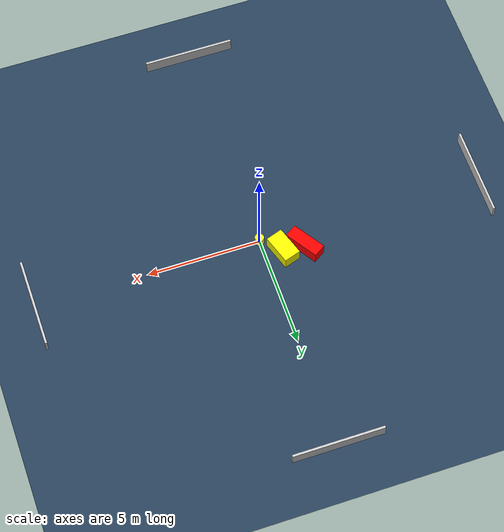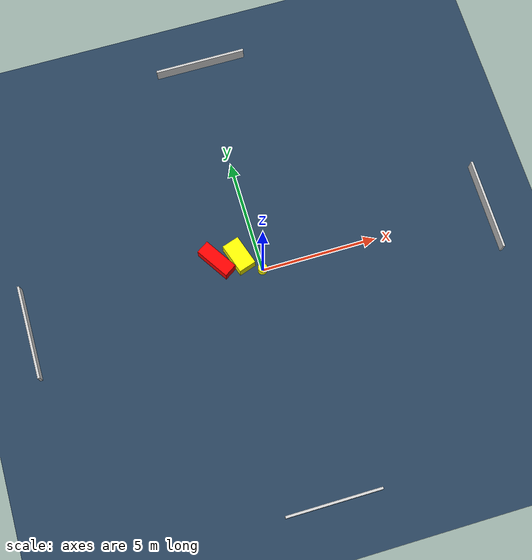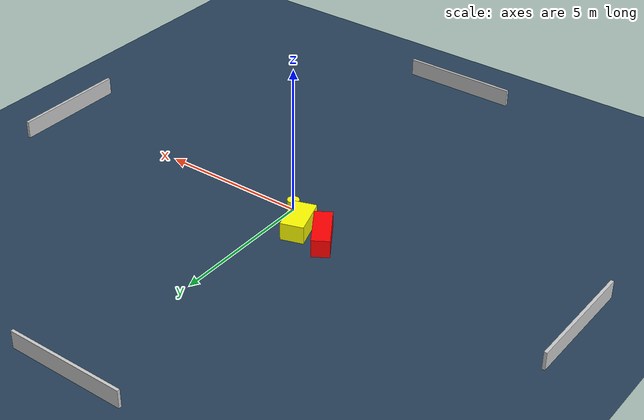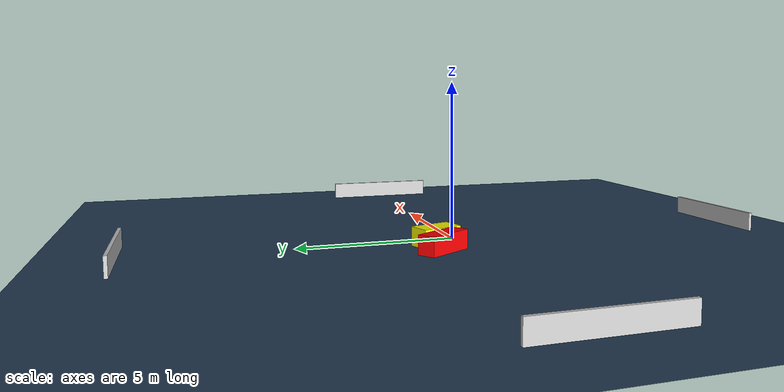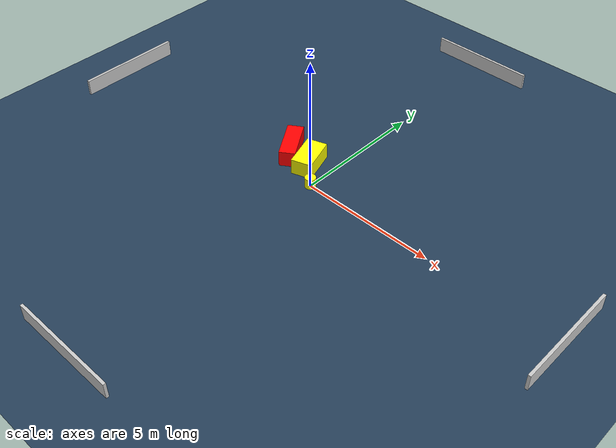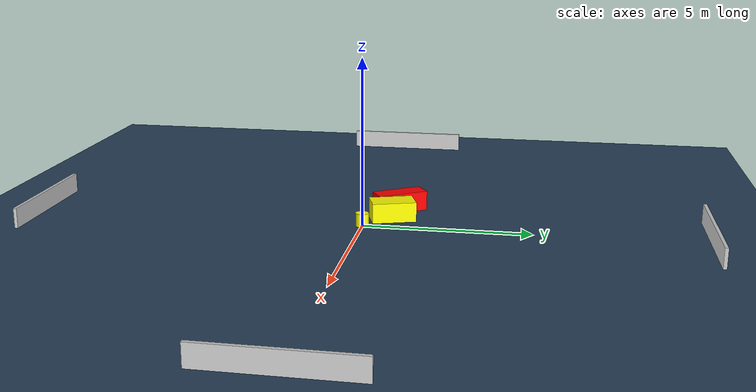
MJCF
<?xml version="1.0" ?>
<mujoco model="generated_environment">
  <option timestep="0.01" integrator="RK4" cone="elliptic"/>
  <default>
    <geom density="1"/>
  </default>
  <asset>
    <texture builtin="gradient" height="3072" name="skybox" rgb1="0.3 0.5 0.7" rgb2="0 0 0" type="skybox" width="512"/>
    <texture builtin="checker" height="300" name="groundplane" rgb1="0.2 0.3 0.4" rgb2="0.1 0.2 0.3" type="2d" width="300"/>
    <material name="groundplane" reflectance="0.2" texrepeat="5 5" texture="groundplane"/>
  </asset>
  <worldbody>
    <light dir="0 0 -1" directional="true" pos="0 0 1.5"/>
    <geom condim="3" friction="0.5 0.005 0.001" material="groundplane" name="floor" pos="0 0 0" size="0 0 0.05" type="plane"/>
    <body name="walls">
      <geom name="wall_1" condim="4" pos="-10.0 0.0 0.3" rgba="0.800000011920929 0.800000011920929 0.800000011920929 1.0" size="0.05 2.0 0.3" type="box"/>
      <geom name="wall_2" condim="4" pos="10.0 0.0 0.3" rgba="0.800000011920929 0.800000011920929 0.800000011920929 1.0" size="0.05 2.0 0.3" type="box"/>
      <geom name="wall_3" condim="4" pos="0.0 -10.0 0.3" rgba="0.800000011920929 0.800000011920929 0.800000011920929 1.0" size="2.0 0.05 0.3" type="box"/>
      <geom name="wall_4" condim="4" pos="0.0 10.0 0.3" rgba="0.800000011920929 0.800000011920929 0.800000011920929 1.0" size="2.0 0.05 0.3" type="box"/>
    </body>
    <body name="robot">
      <joint name="joint_x" type="slide" pos="0 0 0" axis="1 0 0"/>
      <joint name="joint_y" type="slide" pos="0 0 0" axis="0 1 0"/>
      <geom name="robot" type="cylinder" pos="0.0 0.0 0.2" size="0.2 0.2 0.0" mass="5.0" friction="1.0 0.005 0.0001" condim="4" rgba="1.0 1.0 0.0 1.0"/>
    </body>
    <body name="obstacle_1_movable">
      <geom name="obstacle_1_movable" condim="4" pos="-0.8084091475324052 0.7857506543209846 0.3" euler="0 0 18.12342541333426" friction="0.0 0.005 0.001" rgba="1.0 1.0 0.0 1.0" size="0.38216626080348637 0.6613536855619953 0.3" type="box" mass="0.1"/>
      <joint type="free"/>
    </body>
    <body name="obstacle_2_static">
      <geom name="obstacle_2_static" condim="4" pos="-1.7636965186780995 0.8676801695636497 0.3" euler="0 0 212.90609417477057" friction="0.0 0.005 0.001" rgba="1.0 0.0 0.0 1.0" size="0.2964928972302695 0.793797963803472 0.3" type="box"/>
    </body>
  </worldbody>
  <actuator>
    <motor name="actuator_x" joint="joint_x" gear="1" ctrlrange="-1 1"/>
    <motor name="actuator_y" joint="joint_y" gear="1" ctrlrange="-1 1"/>
  </actuator>
</mujoco>
